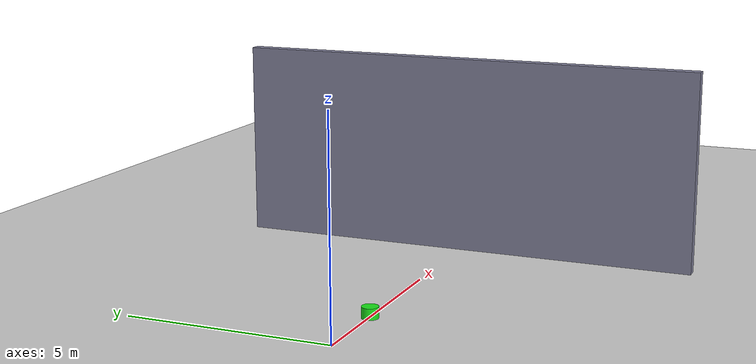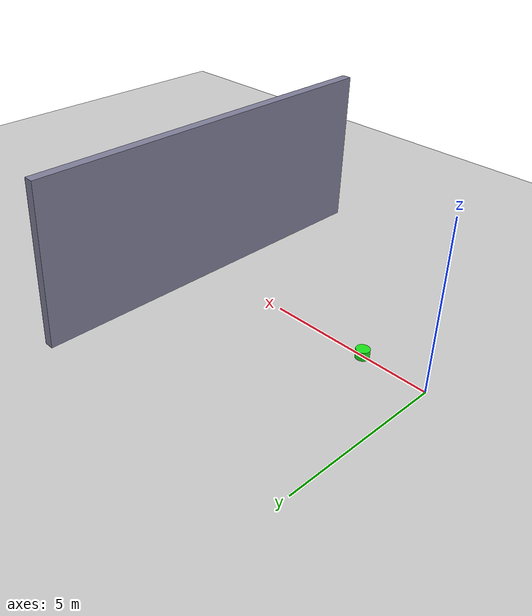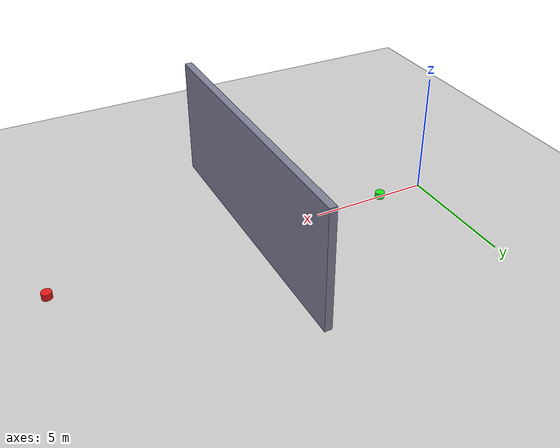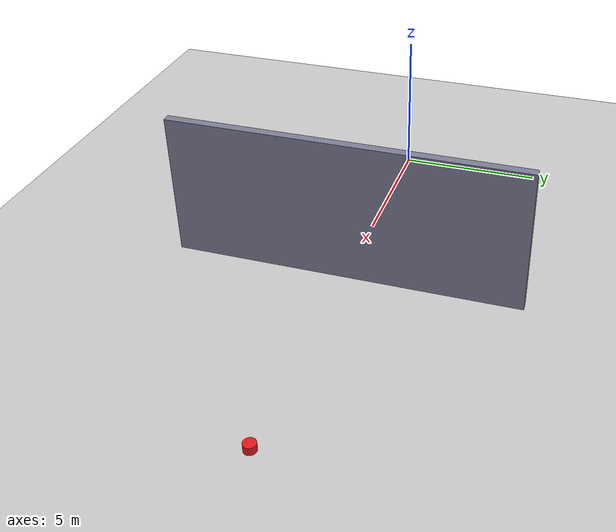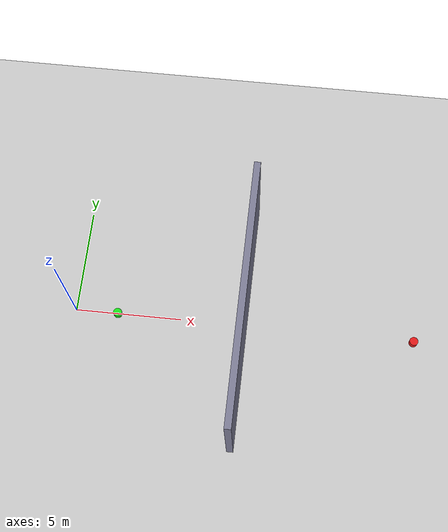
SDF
<?xml version="1.0" ?>
<sdf version="1.6">
  <world name="long_wall_12m">

    <physics type="ode">
      <max_step_size>0.001</max_step_size>
      <real_time_factor>1.0</real_time_factor>
      <real_time_update_rate>1000</real_time_update_rate>
      <gravity>0 0 -9.81</gravity>
      <ode>
        <solver><type>quick</type><iters>50</iters><sor>1.3</sor></solver>
        <constraints>
          <cfm>0.0</cfm><erp>0.2</erp>
          <contact_max_correcting_vel>100.0</contact_max_correcting_vel>
          <contact_surface_layer>0.001</contact_surface_layer>
        </constraints>
      </ode>
    </physics>

    <scene>
      <ambient>0.5 0.5 0.5 1.0</ambient>
      <shadows>false</shadows>
      <grid>false</grid>
    </scene>

    <include><uri>model://sun</uri></include>
    <include><uri>model://ground_plane</uri></include>

    <!-- 12m wall: y=[-6,6], 5.0m tall, 0.3m thick -->
    <model name="the_long_wall">
      <static>true</static>
      <pose>8 0 2.5 0 0 0</pose>
      <link name="link">
        <collision name="collision">
          <geometry><box><size>0.3 12 5.0</size></box></geometry>
        </collision>
        <visual name="visual">
          <geometry><box><size>0.3 12 5.0</size></box></geometry>
          <material>
            <ambient>0.5 0.5 0.6 1.0</ambient>
            <diffuse>0.5 0.5 0.6 1.0</diffuse>
          </material>
        </visual>
      </link>
    </model>

    <!-- Start marker (green) -->
    <model name="marker_start"><static>true</static><pose>2 0 0 0 0 0</pose>
      <link name="link">
        <visual name="v"><geometry><cylinder><radius>0.2</radius><length>0.5</length></cylinder></geometry>
          <material><ambient>0.1 0.9 0.1 1</ambient><diffuse>0.1 0.9 0.1 1</diffuse></material></visual>
      </link></model>

    <!-- Goal marker (red) -->
    <model name="marker_goal"><static>true</static><pose>16 0 0 0 0 0</pose>
      <link name="link">
        <visual name="v"><geometry><cylinder><radius>0.2</radius><length>0.5</length></cylinder></geometry>
          <material><ambient>0.9 0.1 0.1 1</ambient><diffuse>0.9 0.1 0.1 1</diffuse></material></visual>
      </link></model>

  </world>
</sdf>
